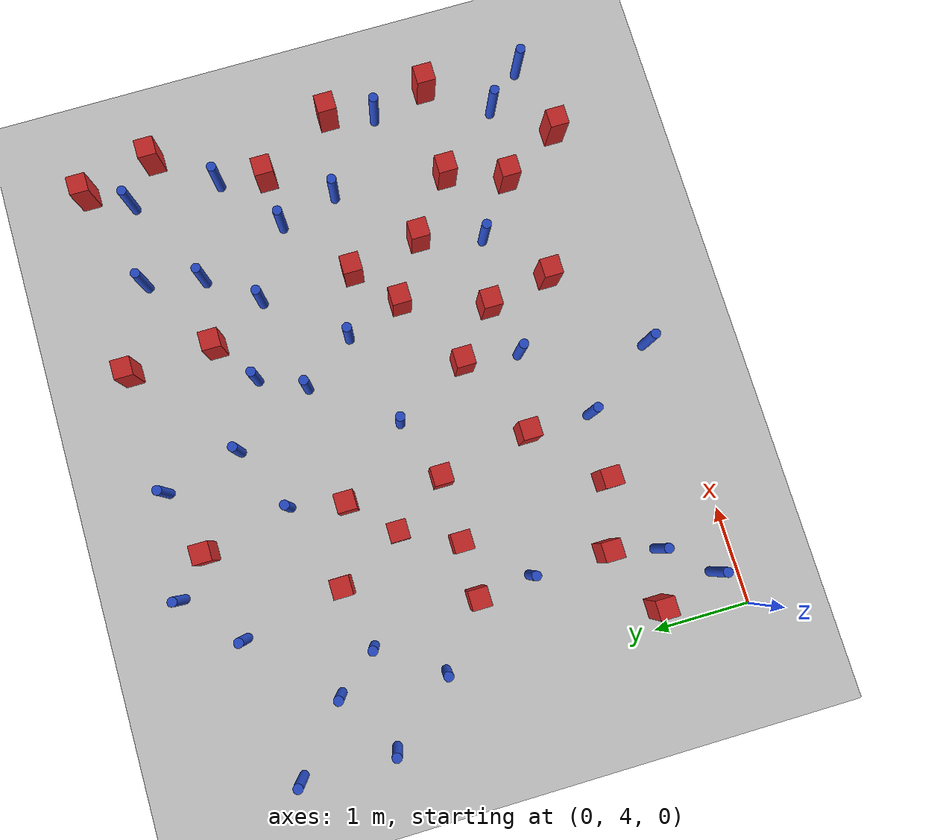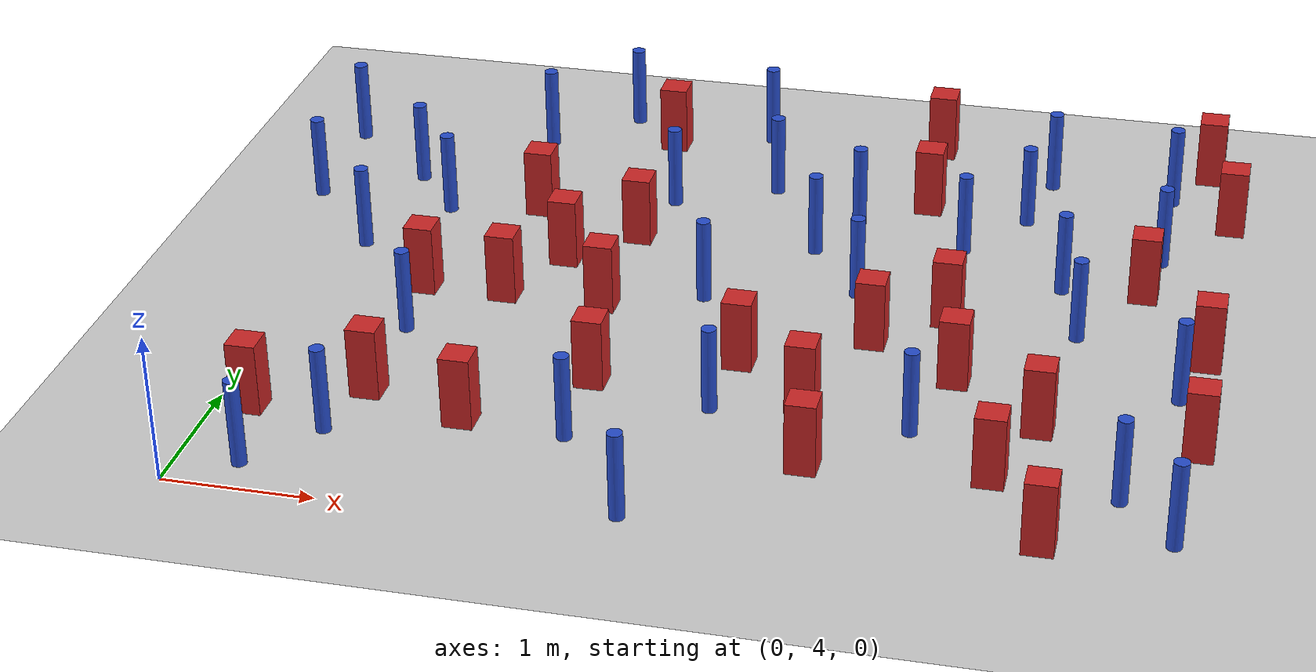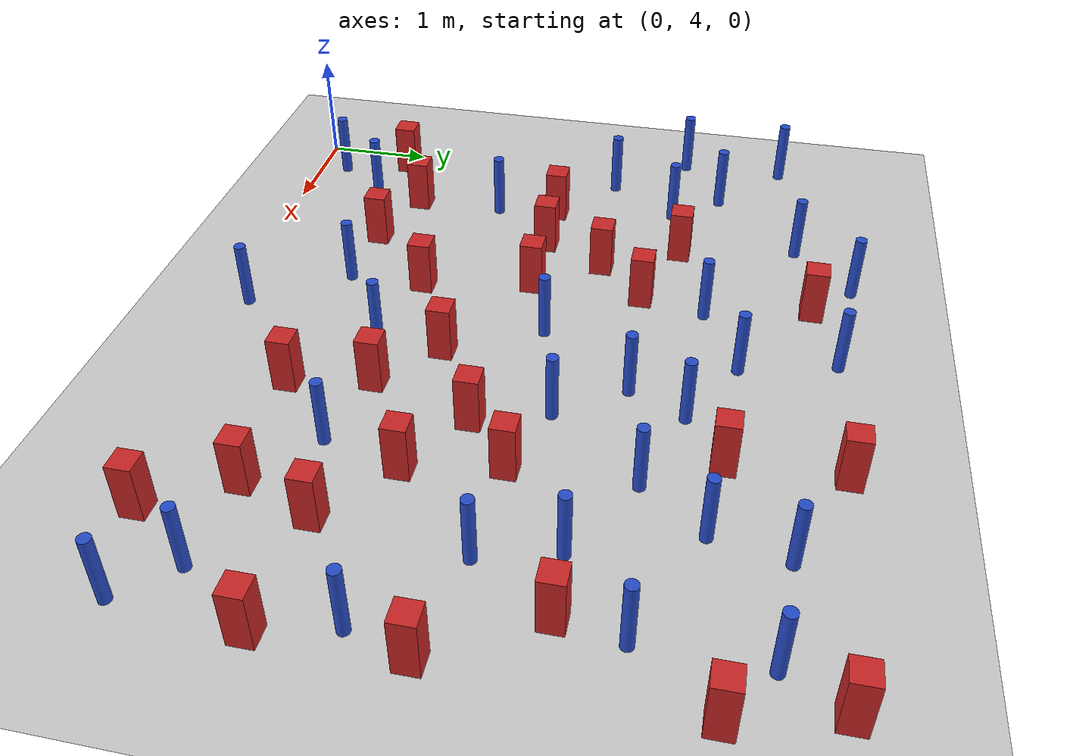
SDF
<sdf version="1.6">
 <world name="default">
  <model name="ground_plane">
   <static>1</static>
   <link name="link">
    <collision name="collision">
     <geometry><plane><normal>0 0 1</normal><size>100 100</size></plane></geometry>
     <surface><friction><ode><mu>100</mu><mu2>50</mu2></ode></friction></surface>
    </collision>
    <visual name="visual">
     <cast_shadows>0</cast_shadows>
     <geometry><plane><normal>0 0 1</normal><size>100 100</size></plane></geometry>
     <material>
      <ambient>1.0 1.0 1.0 1.0</ambient>
      <diffuse>0.8 0.8 0.8 1.0</diffuse>
      <specular>0.01 0.01 0.01 1.000000</specular>
     </material>
    </visual>
   </link>
  </model>
  <model name="pole_obstacle5">
   <static>true</static>
   <pose>4.39153985955 7.93179065304 7.38925637345e-09 -8.47170692796e-08 1.24976764786e-08 -1.74513093032e-07</pose>
   <link name="link">
    <pose>0 0 0.3 0 -0 0</pose>
    <inertial>
     <mass>1</mass>
     <inertia><ixx>0.145833</ixx><ixy>0</ixy><ixz>0</ixz><iyy>0.145833</iyy><iyz>0</iyz><izz>0.125</izz></inertia>
    </inertial>
    <collision name="collision">
     <geometry><cylinder><radius>0.05</radius><length>.6</length></cylinder></geometry>
    </collision>
    <visual name="visual">
     <geometry><cylinder><radius>0.05</radius><length>.6</length></cylinder></geometry>
     <material>
      <script><name>Gazebo/Blue</name><uri>file://media/materials/scripts/gazebo.material</uri></script>
     </material>
    </visual>
   </link>
  </model>
  <model name="pole_obstacle6">
   <static>true</static>
   <pose>5.76742457301 4.99722311599 7.38925637345e-09 -8.47170692796e-08 1.24976764786e-08 -1.74513093032e-07</pose>
   <link name="link">
    <pose>0 0 0.3 0 -0 0</pose>
    <inertial>
     <mass>1</mass>
     <inertia><ixx>0.145833</ixx><ixy>0</ixy><ixz>0</ixz><iyy>0.145833</iyy><iyz>0</iyz><izz>0.125</izz></inertia>
    </inertial>
    <collision name="collision">
     <geometry><cylinder><radius>0.05</radius><length>.6</length></cylinder></geometry>
    </collision>
    <visual name="visual">
     <geometry><cylinder><radius>0.05</radius><length>.6</length></cylinder></geometry>
     <material>
      <script><name>Gazebo/Blue</name><uri>file://media/materials/scripts/gazebo.material</uri></script>
     </material>
    </visual>
   </link>
  </model>
  <model name="pole_obstacle8">
   <static>true</static>
   <pose>5.13573356694 7.50833738013 7.38925637345e-09 -8.47170692796e-08 1.24976764786e-08 -1.74513093032e-07</pose>
   <link name="link">
    <pose>0 0 0.3 0 -0 0</pose>
    <inertial>
     <mass>1</mass>
     <inertia><ixx>0.145833</ixx><ixy>0</ixy><ixz>0</ixz><iyy>0.145833</iyy><iyz>0</iyz><izz>0.125</izz></inertia>
    </inertial>
    <collision name="collision">
     <geometry><cylinder><radius>0.05</radius><length>.6</length></cylinder></geometry>
    </collision>
    <visual name="visual">
     <geometry><cylinder><radius>0.05</radius><length>.6</length></cylinder></geometry>
     <material>
      <script><name>Gazebo/Blue</name><uri>file://media/materials/scripts/gazebo.material</uri></script>
     </material>
    </visual>
   </link>
  </model>
  <model name="square_post_obstacle14">
   <static>true</static>
   <pose>0.232962370025 4.91819987416 1.91545236811e-07 -7.35059704564e-06 1.12565212e-07 2.39332434364e-05</pose>
   <link name="link">
    <pose>0 0 0.25 0 -0 0</pose>
    <inertial>
     <mass>100</mass>
     <inertia>
      <ixx>0.166667</ixx>
      <ixy>0</ixy>
      <ixz>0</ixz>
      <iyy>0.166667</iyy>
      <iyz>0</iyz>
      <izz>0.166667</izz>
     </inertia>
    </inertial>
    <collision name="collision"><geometry><box><size>.2 .2 .5</size></box></geometry></collision>
    <visual name="visual">
     <geometry><box><size>.2 .2 .5</size></box></geometry>
     <material>
      <script><name>Gazebo/Red</name><uri>file://media/materials/scripts/gazebo.material</uri></script>
     </material>
    </visual>
   </link>
  </model>
  <model name="pole_obstacle13">
   <static>true</static>
   <pose>0.784797845011 4.74809284061 7.38925637345e-09 -8.471706928e-08 1.24976765086e-08 -1.74513093015e-07</pose>
   <link name="link">
    <pose>0 0 0.3 0 -0 0</pose>
    <inertial>
     <mass>1</mass>
     <inertia><ixx>0.145833</ixx><ixy>0</ixy><ixz>0</ixz><iyy>0.145833</iyy><iyz>0</iyz><izz>0.125</izz></inertia>
    </inertial>
    <collision name="collision">
     <geometry><cylinder><radius>0.05</radius><length>.6</length></cylinder></geometry>
    </collision>
    <visual name="visual">
     <geometry><cylinder><radius>0.05</radius><length>.6</length></cylinder></geometry>
     <material>
      <script><name>Gazebo/Blue</name><uri>file://media/materials/scripts/gazebo.material</uri></script>
     </material>
    </visual>
   </link>
  </model>
  <model name="pole_obstacle15">
   <static>true</static>
   <pose>2.74899262085 6.89058212394 7.38925637345e-09 -8.47170692798e-08 1.24976765033e-08 -1.74513093019e-07</pose>
   <link name="link">
    <pose>0 0 0.3 0 -0 0</pose>
    <inertial>
     <mass>1</mass>
     <inertia><ixx>0.145833</ixx><ixy>0</ixy><ixz>0</ixz><iyy>0.145833</iyy><iyz>0</iyz><izz>0.125</izz></inertia>
    </inertial>
    <collision name="collision">
     <geometry><cylinder><radius>0.05</radius><length>.6</length></cylinder></geometry>
    </collision>
    <visual name="visual">
     <geometry><cylinder><radius>0.05</radius><length>.6</length></cylinder></geometry>
     <material>
      <script><name>Gazebo/Blue</name><uri>file://media/materials/scripts/gazebo.material</uri></script>
     </material>
    </visual>
   </link>
  </model>
  <model name="pole_obstacle16">
   <static>true</static>
   <pose>2.22736100297 8.21816650694 7.38925637345e-09 -8.47170692793e-08 1.24976764408e-08 -1.74513093041e-07</pose>
   <link name="link">
    <pose>0 0 0.3 0 -0 0</pose>
    <inertial>
     <mass>1</mass>
     <inertia><ixx>0.145833</ixx><ixy>0</ixy><ixz>0</ixz><iyy>0.145833</iyy><iyz>0</iyz><izz>0.125</izz></inertia>
    </inertial>
    <collision name="collision">
     <geometry><cylinder><radius>0.05</radius><length>.6</length></cylinder></geometry>
    </collision>
    <visual name="visual">
     <geometry><cylinder><radius>0.05</radius><length>.6</length></cylinder></geometry>
     <material>
      <script><name>Gazebo/Blue</name><uri>file://media/materials/scripts/gazebo.material</uri></script>
     </material>
    </visual>
   </link>
  </model>
  <model name="pole_obstacle18">
   <static>true</static>
   <pose>6.03513034287 6.23221298561 7.38925637345e-09 -8.47170692796e-08 1.24976764786e-08 -1.74513093032e-07</pose>
   <link name="link">
    <pose>0 0 0.3 0 -0 0</pose>
    <inertial>
     <mass>1</mass>
     <inertia><ixx>0.145833</ixx><ixy>0</ixy><ixz>0</ixz><iyy>0.145833</iyy><iyz>0</iyz><izz>0.125</izz></inertia>
    </inertial>
    <collision name="collision">
     <geometry><cylinder><radius>0.05</radius><length>.6</length></cylinder></geometry>
    </collision>
    <visual name="visual">
     <geometry><cylinder><radius>0.05</radius><length>.6</length></cylinder></geometry>
     <material>
      <script><name>Gazebo/Blue</name><uri>file://media/materials/scripts/gazebo.material</uri></script>
     </material>
    </visual>
   </link>
  </model>
  <model name="square_post_obstacle31">
   <static>true</static>
   <pose>6.17595005001 6.72297390393 1.91545236811e-07 -7.35059704564e-06 1.12565212e-07 2.39332434364e-05</pose>
   <link name="link">
    <pose>0 0 0.25 0 -0 0</pose>
    <inertial>
     <mass>100</mass>
     <inertia>
      <ixx>0.166667</ixx>
      <ixy>0</ixy>
      <ixz>0</ixz>
      <iyy>0.166667</iyy>
      <iyz>0</iyz>
      <izz>0.166667</izz>
     </inertia>
    </inertial>
    <collision name="collision"><geometry><box><size>.2 .2 .5</size></box></geometry></collision>
    <visual name="visual">
     <geometry><box><size>.2 .2 .5</size></box></geometry>
     <material>
      <script><name>Gazebo/Red</name><uri>file://media/materials/scripts/gazebo.material</uri></script>
     </material>
    </visual>
   </link>
  </model>
  <model name="pole_obstacle22">
   <static>true</static>
   <pose>2.84004689693 4.20362259301 7.38925637345e-09 -8.47170692798e-08 1.24976765033e-08 -1.74513093019e-07</pose>
   <link name="link">
    <pose>0 0 0.3 0 -0 0</pose>
    <inertial>
     <mass>1</mass>
     <inertia><ixx>0.145833</ixx><ixy>0</ixy><ixz>0</ixz><iyy>0.145833</iyy><iyz>0</iyz><izz>0.125</izz></inertia>
    </inertial>
    <collision name="collision">
     <geometry><cylinder><radius>0.05</radius><length>.6</length></cylinder></geometry>
    </collision>
    <visual name="visual">
     <geometry><cylinder><radius>0.05</radius><length>.6</length></cylinder></geometry>
     <material>
      <script><name>Gazebo/Blue</name><uri>file://media/materials/scripts/gazebo.material</uri></script>
     </material>
    </visual>
   </link>
  </model>
  <model name="square_post_obstacle32">
   <static>true</static>
   <pose>4.96659706531 5.07061519006 1.91545236811e-07 -7.35059704564e-06 1.12565212e-07 2.39332434364e-05</pose>
   <link name="link">
    <pose>0 0 0.25 0 -0 0</pose>
    <inertial>
     <mass>100</mass>
     <inertia>
      <ixx>0.166667</ixx>
      <ixy>0</ixy>
      <ixz>0</ixz>
      <iyy>0.166667</iyy>
      <iyz>0</iyz>
      <izz>0.166667</izz>
     </inertia>
    </inertial>
    <collision name="collision"><geometry><box><size>.2 .2 .5</size></box></geometry></collision>
    <visual name="visual">
     <geometry><box><size>.2 .2 .5</size></box></geometry>
     <material>
      <script><name>Gazebo/Red</name><uri>file://media/materials/scripts/gazebo.material</uri></script>
     </material>
    </visual>
   </link>
  </model>
  <model name="square_post_obstacle33">
   <static>true</static>
   <pose>4.58626092064 6.16494144715 1.91545236811e-07 -7.35059704564e-06 1.12565212e-07 2.39332434364e-05</pose>
   <link name="link">
    <pose>0 0 0.25 0 -0 0</pose>
    <inertial>
     <mass>100</mass>
     <inertia>
      <ixx>0.166667</ixx>
      <ixy>0</ixy>
      <ixz>0</ixz>
      <iyy>0.166667</iyy>
      <iyz>0</iyz>
      <izz>0.166667</izz>
     </inertia>
    </inertial>
    <collision name="collision"><geometry><box><size>.2 .2 .5</size></box></geometry></collision>
    <visual name="visual">
     <geometry><box><size>.2 .2 .5</size></box></geometry>
     <material>
      <script><name>Gazebo/Red</name><uri>file://media/materials/scripts/gazebo.material</uri></script>
     </material>
    </visual>
   </link>
  </model>
  <model name="pole_obstacle28">
   <static>true</static>
   <pose>1.08086170697 8.9822980315 7.38925637345e-09 -8.47170692798e-08 1.24976764881e-08 -1.74513093027e-07</pose>
   <link name="link">
    <pose>0 0 0.3 0 -0 0</pose>
    <inertial>
     <mass>1</mass>
     <inertia><ixx>0.145833</ixx><ixy>0</ixy><ixz>0</ixz><iyy>0.145833</iyy><iyz>0</iyz><izz>0.125</izz></inertia>
    </inertial>
    <collision name="collision">
     <geometry><cylinder><radius>0.05</radius><length>.6</length></cylinder></geometry>
    </collision>
    <visual name="visual">
     <geometry><cylinder><radius>0.05</radius><length>.6</length></cylinder></geometry>
     <material>
      <script><name>Gazebo/Blue</name><uri>file://media/materials/scripts/gazebo.material</uri></script>
     </material>
    </visual>
   </link>
  </model>
  <model name="pole_obstacle30">
   <static>true</static>
   <pose>2.29263135251 4.98502636594 7.38925637345e-09 -8.47170692798e-08 1.24976765033e-08 -1.74513093019e-07</pose>
   <link name="link">
    <pose>0 0 0.3 0 -0 0</pose>
    <inertial>
     <mass>1</mass>
     <inertia><ixx>0.145833</ixx><ixy>0</ixy><ixz>0</ixz><iyy>0.145833</iyy><iyz>0</iyz><izz>0.125</izz></inertia>
    </inertial>
    <collision name="collision">
     <geometry><cylinder><radius>0.05</radius><length>.6</length></cylinder></geometry>
    </collision>
    <visual name="visual">
     <geometry><cylinder><radius>0.05</radius><length>.6</length></cylinder></geometry>
     <material>
      <script><name>Gazebo/Blue</name><uri>file://media/materials/scripts/gazebo.material</uri></script>
     </material>
    </visual>
   </link>
  </model>
  <model name="square_post_obstacle38">
   <static>true</static>
   <pose>2.01244430634 9.14642667524 1.91545236811e-07 -7.35059704564e-06 1.12565212e-07 2.39332434364e-05</pose>
   <link name="link">
    <pose>0 0 0.25 0 -0 0</pose>
    <inertial>
     <mass>100</mass>
     <inertia>
      <ixx>0.166667</ixx>
      <ixy>0</ixy>
      <ixz>0</ixz>
      <iyy>0.166667</iyy>
      <iyz>0</iyz>
      <izz>0.166667</izz>
     </inertia>
    </inertial>
    <collision name="collision"><geometry><box><size>.2 .2 .5</size></box></geometry></collision>
    <visual name="visual">
     <geometry><box><size>.2 .2 .5</size></box></geometry>
     <material>
      <script><name>Gazebo/Red</name><uri>file://media/materials/scripts/gazebo.material</uri></script>
     </material>
    </visual>
   </link>
  </model>
  <model name="pole_obstacle43">
   <static>true</static>
   <pose>3.76525996056 7.15480008397 7.38925637345e-09 -8.47170692798e-08 1.24976765033e-08 -1.74513093019e-07</pose>
   <link name="link">
    <pose>0 0 0.3 0 -0 0</pose>
    <inertial>
     <mass>1</mass>
     <inertia><ixx>0.145833</ixx><ixy>0</ixy><ixz>0</ixz><iyy>0.145833</iyy><iyz>0</iyz><izz>0.125</izz></inertia>
    </inertial>
    <collision name="collision">
     <geometry><cylinder><radius>0.05</radius><length>.6</length></cylinder></geometry>
    </collision>
    <visual name="visual">
     <geometry><cylinder><radius>0.05</radius><length>.6</length></cylinder></geometry>
     <material>
      <script><name>Gazebo/Blue</name><uri>file://media/materials/scripts/gazebo.material</uri></script>
     </material>
    </visual>
   </link>
  </model>
  <model name="square_post_obstacle55">
   <static>true</static>
   <pose>1.3088949511 7.9092401033 1.91545236811e-07 -7.35059704564e-06 1.12565212e-07 2.39332434364e-05</pose>
   <link name="link">
    <pose>0 0 0.25 0 -0 0</pose>
    <inertial>
     <mass>100</mass>
     <inertia>
      <ixx>0.166667</ixx>
      <ixy>0</ixy>
      <ixz>0</ixz>
      <iyy>0.166667</iyy>
      <iyz>0</iyz>
      <izz>0.166667</izz>
     </inertia>
    </inertial>
    <collision name="collision"><geometry><box><size>.2 .2 .5</size></box></geometry></collision>
    <visual name="visual">
     <geometry><box><size>.2 .2 .5</size></box></geometry>
     <material>
      <script><name>Gazebo/Red</name><uri>file://media/materials/scripts/gazebo.material</uri></script>
     </material>
    </visual>
   </link>
  </model>
  <model name="pole_obstacle66">
   <static>true</static>
   <pose>6.12546084603 4.60340250097 7.38925637345e-09 -8.47170692796e-08 1.24976764786e-08 -1.74513093032e-07</pose>
   <link name="link">
    <pose>0 0 0.3 0 -0 0</pose>
    <inertial>
     <mass>1</mass>
     <inertia><ixx>0.145833</ixx><ixy>0</ixy><ixz>0</ixz><iyy>0.145833</iyy><iyz>0</iyz><izz>0.125</izz></inertia>
    </inertial>
    <collision name="collision">
     <geometry><cylinder><radius>0.05</radius><length>.6</length></cylinder></geometry>
    </collision>
    <visual name="visual">
     <geometry><cylinder><radius>0.05</radius><length>.6</length></cylinder></geometry>
     <material>
      <script><name>Gazebo/Blue</name><uri>file://media/materials/scripts/gazebo.material</uri></script>
     </material>
    </visual>
   </link>
  </model>
  <model name="square_post_obstacle73">
   <static>true</static>
   <pose>1.60041436819 5.03787966719 1.91545236811e-07 -7.35059704564e-06 1.12565212e-07 2.39332434364e-05</pose>
   <link name="link">
    <pose>0 0 0.25 0 -0 0</pose>
    <inertial>
     <mass>100</mass>
     <inertia>
      <ixx>0.166667</ixx>
      <ixy>0</ixy>
      <ixz>0</ixz>
      <iyy>0.166667</iyy>
      <iyz>0</iyz>
      <izz>0.166667</izz>
     </inertia>
    </inertial>
    <collision name="collision"><geometry><box><size>.2 .2 .5</size></box></geometry></collision>
    <visual name="visual">
     <geometry><box><size>.2 .2 .5</size></box></geometry>
     <material>
      <script><name>Gazebo/Red</name><uri>file://media/materials/scripts/gazebo.material</uri></script>
     </material>
    </visual>
   </link>
  </model>
  <model name="square_post_obstacle76">
   <static>true</static>
   <pose>0.91072017648 5.25310935651 1.91545236811e-07 -7.35059704564e-06 1.12565212e-07 2.39332434364e-05</pose>
   <link name="link">
    <pose>0 0 0.25 0 -0 0</pose>
    <inertial>
     <mass>100</mass>
     <inertia>
      <ixx>0.166667</ixx>
      <ixy>0</ixy>
      <ixz>0</ixz>
      <iyy>0.166667</iyy>
      <iyz>0</iyz>
      <izz>0.166667</izz>
     </inertia>
    </inertial>
    <collision name="collision"><geometry><box><size>.2 .2 .5</size></box></geometry></collision>
    <visual name="visual">
     <geometry><box><size>.2 .2 .5</size></box></geometry>
     <material>
      <script><name>Gazebo/Red</name><uri>file://media/materials/scripts/gazebo.material</uri></script>
     </material>
    </visual>
   </link>
  </model>
  <model name="pole_obstacle74">
   <static>true</static>
   <pose>-0.363256607138 8.78772341327 7.38925637345e-09 -8.47170692796e-08 1.24976764724e-08 -1.74513093036e-07</pose>
   <link name="link">
    <pose>0 0 0.3 0 -0 0</pose>
    <inertial>
     <mass>1</mass>
     <inertia><ixx>0.145833</ixx><ixy>0</ixy><ixz>0</ixz><iyy>0.145833</iyy><iyz>0</iyz><izz>0.125</izz></inertia>
    </inertial>
    <collision name="collision">
     <geometry><cylinder><radius>0.05</radius><length>.6</length></cylinder></geometry>
    </collision>
    <visual name="visual">
     <geometry><cylinder><radius>0.05</radius><length>.6</length></cylinder></geometry>
     <material>
      <script><name>Gazebo/Blue</name><uri>file://media/materials/scripts/gazebo.material</uri></script>
     </material>
    </visual>
   </link>
  </model>
  <model name="pole_obstacle81">
   <static>true</static>
   <pose>5.77565618523 8.03570630819 7.38925637345e-09 -8.47170692797e-08 1.24976764908e-08 -1.74513093024e-07</pose>
   <link name="link">
    <pose>0 0 0.3 0 -0 0</pose>
    <inertial>
     <mass>1</mass>
     <inertia><ixx>0.145833</ixx><ixy>0</ixy><ixz>0</ixz><iyy>0.145833</iyy><iyz>0</iyz><izz>0.125</izz></inertia>
    </inertial>
    <collision name="collision">
     <geometry><cylinder><radius>0.05</radius><length>.6</length></cylinder></geometry>
    </collision>
    <visual name="visual">
     <geometry><cylinder><radius>0.05</radius><length>.6</length></cylinder></geometry>
     <material>
      <script><name>Gazebo/Blue</name><uri>file://media/materials/scripts/gazebo.material</uri></script>
     </material>
    </visual>
   </link>
  </model>
  <model name="pole_obstacle87">
   <static>true</static>
   <pose>0.651697800376 7.77038303811 7.38925637345e-09 -8.471706928e-08 1.24976765086e-08 -1.74513093015e-07</pose>
   <link name="link">
    <pose>0 0 0.3 0 -0 0</pose>
    <inertial>
     <mass>1</mass>
     <inertia><ixx>0.145833</ixx><ixy>0</ixy><ixz>0</ixz><iyy>0.145833</iyy><iyz>0</iyz><izz>0.125</izz></inertia>
    </inertial>
    <collision name="collision">
     <geometry><cylinder><radius>0.05</radius><length>.6</length></cylinder></geometry>
    </collision>
    <visual name="visual">
     <geometry><cylinder><radius>0.05</radius><length>.6</length></cylinder></geometry>
     <material>
      <script><name>Gazebo/Blue</name><uri>file://media/materials/scripts/gazebo.material</uri></script>
     </material>
    </visual>
   </link>
  </model>
  <model name="pole_obstacle103">
   <static>true</static>
   <pose>1.63134176314 9.49767391951 7.38925637345e-09 -8.47170692798e-08 1.24976764881e-08 -1.74513093027e-07</pose>
   <link name="link">
    <pose>0 0 0.3 0 -0 0</pose>
    <inertial>
     <mass>1</mass>
     <inertia><ixx>0.145833</ixx><ixy>0</ixy><ixz>0</ixz><iyy>0.145833</iyy><iyz>0</iyz><izz>0.125</izz></inertia>
    </inertial>
    <collision name="collision">
     <geometry><cylinder><radius>0.05</radius><length>.6</length></cylinder></geometry>
    </collision>
    <visual name="visual">
     <geometry><cylinder><radius>0.05</radius><length>.6</length></cylinder></geometry>
     <material>
      <script><name>Gazebo/Blue</name><uri>file://media/materials/scripts/gazebo.material</uri></script>
     </material>
    </visual>
   </link>
  </model>
  <model name="square_post_obstacle92">
   <static>true</static>
   <pose>2.10453509981 7.64649235375 1.91545236811e-07 -7.35059704564e-06 1.12565212e-07 2.39332434364e-05</pose>
   <link name="link">
    <pose>0 0 0.25 0 -0 0</pose>
    <inertial>
     <mass>100</mass>
     <inertia>
      <ixx>0.166667</ixx>
      <ixy>0</ixy>
      <ixz>0</ixz>
      <iyy>0.166667</iyy>
      <iyz>0</iyz>
      <izz>0.166667</izz>
     </inertia>
    </inertial>
    <collision name="collision"><geometry><box><size>.2 .2 .5</size></box></geometry></collision>
    <visual name="visual">
     <geometry><box><size>.2 .2 .5</size></box></geometry>
     <material>
      <script><name>Gazebo/Red</name><uri>file://media/materials/scripts/gazebo.material</uri></script>
     </material>
    </visual>
   </link>
  </model>
  <model name="square_post_obstacle111">
   <static>true</static>
   <pose>5.34566899291 4.4313223376 1.91545236811e-07 -7.35059704564e-06 1.12565212e-07 2.39332434364e-05</pose>
   <link name="link">
    <pose>0 0 0.25 0 -0 0</pose>
    <inertial>
     <mass>100</mass>
     <inertia>
      <ixx>0.166667</ixx>
      <ixy>0</ixy>
      <ixz>0</ixz>
      <iyy>0.166667</iyy>
      <iyz>0</iyz>
      <izz>0.166667</izz>
     </inertia>
    </inertial>
    <collision name="collision"><geometry><box><size>.2 .2 .5</size></box></geometry></collision>
    <visual name="visual">
     <geometry><box><size>.2 .2 .5</size></box></geometry>
     <material>
      <script><name>Gazebo/Red</name><uri>file://media/materials/scripts/gazebo.material</uri></script>
     </material>
    </visual>
   </link>
  </model>
  <model name="pole_obstacle120">
   <static>true</static>
   <pose>-0.354308188248 7.82070968504 7.38925637345e-09 -8.471706928e-08 1.24976765079e-08 -1.74513093015e-07</pose>
   <link name="link">
    <pose>0 0 0.3 0 -0 0</pose>
    <inertial>
     <mass>1</mass>
     <inertia><ixx>0.145833</ixx><ixy>0</ixy><ixz>0</ixz><iyy>0.145833</iyy><iyz>0</iyz><izz>0.125</izz></inertia>
    </inertial>
    <collision name="collision">
     <geometry><cylinder><radius>0.05</radius><length>.6</length></cylinder></geometry>
    </collision>
    <visual name="visual">
     <geometry><cylinder><radius>0.05</radius><length>.6</length></cylinder></geometry>
     <material>
      <script><name>Gazebo/Blue</name><uri>file://media/materials/scripts/gazebo.material</uri></script>
     </material>
    </visual>
   </link>
  </model>
  <model name="square_post_obstacle112">
   <static>true</static>
   <pose>5.1889103898 5.69261006343 1.91545236811e-07 -7.35059704564e-06 1.12565212e-07 2.39332434364e-05</pose>
   <link name="link">
    <pose>0 0 0.25 0 -0 0</pose>
    <inertial>
     <mass>100</mass>
     <inertia>
      <ixx>0.166667</ixx>
      <ixy>0</ixy>
      <ixz>0</ixz>
      <iyy>0.166667</iyy>
      <iyz>0</iyz>
      <izz>0.166667</izz>
     </inertia>
    </inertial>
    <collision name="collision"><geometry><box><size>.2 .2 .5</size></box></geometry></collision>
    <visual name="visual">
     <geometry><box><size>.2 .2 .5</size></box></geometry>
     <material>
      <script><name>Gazebo/Red</name><uri>file://media/materials/scripts/gazebo.material</uri></script>
     </material>
    </visual>
   </link>
  </model>
  <model name="pole_obstacle121">
   <static>true</static>
   <pose>3.10835763081 5.50035315032 7.38925637345e-09 -8.47170692798e-08 1.24976765033e-08 -1.74513093019e-07</pose>
   <link name="link">
    <pose>0 0 0.3 0 -0 0</pose>
    <inertial>
     <mass>1</mass>
     <inertia><ixx>0.145833</ixx><ixy>0</ixy><ixz>0</ixz><iyy>0.145833</iyy><iyz>0</iyz><izz>0.125</izz></inertia>
    </inertial>
    <collision name="collision">
     <geometry><cylinder><radius>0.05</radius><length>.6</length></cylinder></geometry>
    </collision>
    <visual name="visual">
     <geometry><cylinder><radius>0.05</radius><length>.6</length></cylinder></geometry>
     <material>
      <script><name>Gazebo/Blue</name><uri>file://media/materials/scripts/gazebo.material</uri></script>
     </material>
    </visual>
   </link>
  </model>
  <model name="pole_obstacle123">
   <static>true</static>
   <pose>4.40342482193 5.49537354942 7.38925637345e-09 -8.47170692796e-08 1.24976764786e-08 -1.74513093032e-07</pose>
   <link name="link">
    <pose>0 0 0.3 0 -0 0</pose>
    <inertial>
     <mass>1</mass>
     <inertia><ixx>0.145833</ixx><ixy>0</ixy><ixz>0</ixz><iyy>0.145833</iyy><iyz>0</iyz><izz>0.125</izz></inertia>
    </inertial>
    <collision name="collision">
     <geometry><cylinder><radius>0.05</radius><length>.6</length></cylinder></geometry>
    </collision>
    <visual name="visual">
     <geometry><cylinder><radius>0.05</radius><length>.6</length></cylinder></geometry>
     <material>
      <script><name>Gazebo/Blue</name><uri>file://media/materials/scripts/gazebo.material</uri></script>
     </material>
    </visual>
   </link>
  </model>
  <model name="square_post_obstacle113">
   <static>true</static>
   <pose>5.69326045671 7.53853142987 1.91545236811e-07 -7.35059704564e-06 1.12565212e-07 2.39332434364e-05</pose>
   <link name="link">
    <pose>0 0 0.25 0 -0 0</pose>
    <inertial>
     <mass>100</mass>
     <inertia>
      <ixx>0.166667</ixx>
      <ixy>0</ixy>
      <ixz>0</ixz>
      <iyy>0.166667</iyy>
      <iyz>0</iyz>
      <izz>0.166667</izz>
     </inertia>
    </inertial>
    <collision name="collision"><geometry><box><size>.2 .2 .5</size></box></geometry></collision>
    <visual name="visual">
     <geometry><box><size>.2 .2 .5</size></box></geometry>
     <material>
      <script><name>Gazebo/Red</name><uri>file://media/materials/scripts/gazebo.material</uri></script>
     </material>
    </visual>
   </link>
  </model>
  <model name="pole_obstacle129">
   <static>true</static>
   <pose>4.77958987309 8.45444126846 7.38925637345e-09 -8.471706928e-08 1.24976765081e-08 -1.74513093015e-07</pose>
   <link name="link">
    <pose>0 0 0.3 0 -0 0</pose>
    <inertial>
     <mass>1</mass>
     <inertia><ixx>0.145833</ixx><ixy>0</ixy><ixz>0</ixz><iyy>0.145833</iyy><iyz>0</iyz><izz>0.125</izz></inertia>
    </inertial>
    <collision name="collision">
     <geometry><cylinder><radius>0.05</radius><length>.6</length></cylinder></geometry>
    </collision>
    <visual name="visual">
     <geometry><cylinder><radius>0.05</radius><length>.6</length></cylinder></geometry>
     <material>
      <script><name>Gazebo/Blue</name><uri>file://media/materials/scripts/gazebo.material</uri></script>
     </material>
    </visual>
   </link>
  </model>
  <model name="square_post_obstacle114">
   <static>true</static>
   <pose>0.830090490671 6.63945671948 1.91545236811e-07 -7.35059704564e-06 1.12565212e-07 2.39332434364e-05</pose>
   <link name="link">
    <pose>0 0 0.25 0 -0 0</pose>
    <inertial>
     <mass>100</mass>
     <inertia>
      <ixx>0.166667</ixx>
      <ixy>0</ixy>
      <ixz>0</ixz>
      <iyy>0.166667</iyy>
      <iyz>0</iyz>
      <izz>0.166667</izz>
     </inertia>
    </inertial>
    <collision name="collision"><geometry><box><size>.2 .2 .5</size></box></geometry></collision>
    <visual name="visual">
     <geometry><box><size>.2 .2 .5</size></box></geometry>
     <material>
      <script><name>Gazebo/Red</name><uri>file://media/materials/scripts/gazebo.material</uri></script>
     </material>
    </visual>
   </link>
  </model>
  <model name="pole_obstacle135">
   <static>true</static>
   <pose>0.408938806811 4.27548640386 7.38925637345e-09 -8.471706928e-08 1.24976765079e-08 -1.74513093015e-07</pose>
   <link name="link">
    <pose>0 0 0.3 0 -0 0</pose>
    <inertial>
     <mass>1</mass>
     <inertia><ixx>0.145833</ixx><ixy>0</ixy><ixz>0</ixz><iyy>0.145833</iyy><iyz>0</iyz><izz>0.125</izz></inertia>
    </inertial>
    <collision name="collision">
     <geometry><cylinder><radius>0.05</radius><length>.6</length></cylinder></geometry>
    </collision>
    <visual name="visual">
     <geometry><cylinder><radius>0.05</radius><length>.6</length></cylinder></geometry>
     <material>
      <script><name>Gazebo/Blue</name><uri>file://media/materials/scripts/gazebo.material</uri></script>
     </material>
    </visual>
   </link>
  </model>
  <model name="square_post_obstacle116">
   <static>true</static>
   <pose>1.68109024433 7.22197656062 1.91545236811e-07 -7.35059704564e-06 1.12565212e-07 2.39332434364e-05</pose>
   <link name="link">
    <pose>0 0 0.25 0 -0 0</pose>
    <inertial>
     <mass>100</mass>
     <inertia>
      <ixx>0.166667</ixx>
      <ixy>0</ixy>
      <ixz>0</ixz>
      <iyy>0.166667</iyy>
      <iyz>0</iyz>
      <izz>0.166667</izz>
     </inertia>
    </inertial>
    <collision name="collision"><geometry><box><size>.2 .2 .5</size></box></geometry></collision>
    <visual name="visual">
     <geometry><box><size>.2 .2 .5</size></box></geometry>
     <material>
      <script><name>Gazebo/Red</name><uri>file://media/materials/scripts/gazebo.material</uri></script>
     </material>
    </visual>
   </link>
  </model>
  <model name="pole_obstacle136">
   <static>true</static>
   <pose>3.59677728636 8.19386945836 7.38925637345e-09 -8.47170692793e-08 1.24976764408e-08 -1.74513093041e-07</pose>
   <link name="link">
    <pose>0 0 0.3 0 -0 0</pose>
    <inertial>
     <mass>1</mass>
     <inertia><ixx>0.145833</ixx><ixy>0</ixy><ixz>0</ixz><iyy>0.145833</iyy><iyz>0</iyz><izz>0.125</izz></inertia>
    </inertial>
    <collision name="collision">
     <geometry><cylinder><radius>0.05</radius><length>.6</length></cylinder></geometry>
    </collision>
    <visual name="visual">
     <geometry><cylinder><radius>0.05</radius><length>.6</length></cylinder></geometry>
     <material>
      <script><name>Gazebo/Blue</name><uri>file://media/materials/scripts/gazebo.material</uri></script>
     </material>
    </visual>
   </link>
  </model>
  <model name="square_post_obstacle127">
   <static>true</static>
   <pose>3.68083653551 5.65840267269 1.91545236811e-07 -7.35059704564e-06 1.12565212e-07 2.39332434364e-05</pose>
   <link name="link">
    <pose>0 0 0.25 0 -0 0</pose>
    <inertial>
     <mass>100</mass>
     <inertia>
      <ixx>0.166667</ixx>
      <ixy>0</ixy>
      <ixz>0</ixz>
      <iyy>0.166667</iyy>
      <iyz>0</iyz>
      <izz>0.166667</izz>
     </inertia>
    </inertial>
    <collision name="collision"><geometry><box><size>.2 .2 .5</size></box></geometry></collision>
    <visual name="visual">
     <geometry><box><size>.2 .2 .5</size></box></geometry>
     <material>
      <script><name>Gazebo/Red</name><uri>file://media/materials/scripts/gazebo.material</uri></script>
     </material>
    </visual>
   </link>
  </model>
  <model name="square_post_obstacle128">
   <static>true</static>
   <pose>3.82015970273 4.97283858454 1.91545236811e-07 -7.35059704564e-06 1.12565212e-07 2.39332434364e-05</pose>
   <link name="link">
    <pose>0 0 0.25 0 -0 0</pose>
    <inertial>
     <mass>100</mass>
     <inertia>
      <ixx>0.166667</ixx>
      <ixy>0</ixy>
      <ixz>0</ixz>
      <iyy>0.166667</iyy>
      <iyz>0</iyz>
      <izz>0.166667</izz>
     </inertia>
    </inertial>
    <collision name="collision"><geometry><box><size>.2 .2 .5</size></box></geometry></collision>
    <visual name="visual">
     <geometry><box><size>.2 .2 .5</size></box></geometry>
     <material>
      <script><name>Gazebo/Red</name><uri>file://media/materials/scripts/gazebo.material</uri></script>
     </material>
    </visual>
   </link>
  </model>
  <model name="square_post_obstacle129">
   <static>true</static>
   <pose>3.97330372839 6.54512328771 1.91545236811e-07 -7.35059704564e-06 1.12565212e-07 2.39332434364e-05</pose>
   <link name="link">
    <pose>0 0 0.25 0 -0 0</pose>
    <inertial>
     <mass>100</mass>
     <inertia>
      <ixx>0.166667</ixx>
      <ixy>0</ixy>
      <ixz>0</ixz>
      <iyy>0.166667</iyy>
      <iyz>0</iyz>
      <izz>0.166667</izz>
     </inertia>
    </inertial>
    <collision name="collision"><geometry><box><size>.2 .2 .5</size></box></geometry></collision>
    <visual name="visual">
     <geometry><box><size>.2 .2 .5</size></box></geometry>
     <material>
      <script><name>Gazebo/Red</name><uri>file://media/materials/scripts/gazebo.material</uri></script>
     </material>
    </visual>
   </link>
  </model>
  <model name="square_post_obstacle131">
   <static>true</static>
   <pose>2.09307528019 6.65097722752 1.91545236811e-07 -7.35059704564e-06 1.12565212e-07 2.39332434364e-05</pose>
   <link name="link">
    <pose>0 0 0.25 0 -0 0</pose>
    <inertial>
     <mass>100</mass>
     <inertia>
      <ixx>0.166667</ixx>
      <ixy>0</ixy>
      <ixz>0</ixz>
      <iyy>0.166667</iyy>
      <iyz>0</iyz>
      <izz>0.166667</izz>
     </inertia>
    </inertial>
    <collision name="collision"><geometry><box><size>.2 .2 .5</size></box></geometry></collision>
    <visual name="visual">
     <geometry><box><size>.2 .2 .5</size></box></geometry>
     <material>
      <script><name>Gazebo/Red</name><uri>file://media/materials/scripts/gazebo.material</uri></script>
     </material>
    </visual>
   </link>
  </model>
  <model name="square_post_obstacle133">
   <static>true</static>
   <pose>4.05838826374 8.52233491909 1.91545236811e-07 -7.35059704564e-06 1.12565212e-07 2.39332434364e-05</pose>
   <link name="link">
    <pose>0 0 0.25 0 -0 0</pose>
    <inertial>
     <mass>100</mass>
     <inertia>
      <ixx>0.166667</ixx>
      <ixy>0</ixy>
      <ixz>0</ixz>
      <iyy>0.166667</iyy>
      <iyz>0</iyz>
      <izz>0.166667</izz>
     </inertia>
    </inertial>
    <collision name="collision"><geometry><box><size>.2 .2 .5</size></box></geometry></collision>
    <visual name="visual">
     <geometry><box><size>.2 .2 .5</size></box></geometry>
     <material>
      <script><name>Gazebo/Red</name><uri>file://media/materials/scripts/gazebo.material</uri></script>
     </material>
    </visual>
   </link>
  </model>
  <model name="square_post_obstacle138">
   <static>true</static>
   <pose>6.19738625518 5.63340160836 1.91545236811e-07 -7.35059704564e-06 1.12565212e-07 2.39332434364e-05</pose>
   <link name="link">
    <pose>0 0 0.25 0 -0 0</pose>
    <inertial>
     <mass>100</mass>
     <inertia>
      <ixx>0.166667</ixx>
      <ixy>0</ixy>
      <ixz>0</ixz>
      <iyy>0.166667</iyy>
      <iyz>0</iyz>
      <izz>0.166667</izz>
     </inertia>
    </inertial>
    <collision name="collision"><geometry><box><size>.2 .2 .5</size></box></geometry></collision>
    <visual name="visual">
     <geometry><box><size>.2 .2 .5</size></box></geometry>
     <material>
      <script><name>Gazebo/Red</name><uri>file://media/materials/scripts/gazebo.material</uri></script>
     </material>
    </visual>
   </link>
  </model>
  <model name="square_post_obstacle149">
   <static>true</static>
   <pose>4.42620920596 6.93356963306 1.91545236811e-07 -7.35059704564e-06 1.12565212e-07 2.39332434364e-05</pose>
   <link name="link">
    <pose>0 0 0.25 0 -0 0</pose>
    <inertial>
     <mass>100</mass>
     <inertia>
      <ixx>0.166667</ixx>
      <ixy>0</ixy>
      <ixz>0</ixz>
      <iyy>0.166667</iyy>
      <iyz>0</iyz>
      <izz>0.166667</izz>
     </inertia>
    </inertial>
    <collision name="collision"><geometry><box><size>.2 .2 .5</size></box></geometry></collision>
    <visual name="visual">
     <geometry><box><size>.2 .2 .5</size></box></geometry>
     <material>
      <script><name>Gazebo/Red</name><uri>file://media/materials/scripts/gazebo.material</uri></script>
     </material>
    </visual>
   </link>
  </model>
  <model name="square_post_obstacle150">
   <static>true</static>
   <pose>4.01902291382 9.44360073799 1.91545236811e-07 -7.35059704564e-06 1.12565212e-07 2.39332434364e-05</pose>
   <link name="link">
    <pose>0 0 0.25 0 -0 0</pose>
    <inertial>
     <mass>100</mass>
     <inertia>
      <ixx>0.166667</ixx>
      <ixy>0</ixy>
      <ixz>0</ixz>
      <iyy>0.166667</iyy>
      <iyz>0</iyz>
      <izz>0.166667</izz>
     </inertia>
    </inertial>
    <collision name="collision"><geometry><box><size>.2 .2 .5</size></box></geometry></collision>
    <visual name="visual">
     <geometry><box><size>.2 .2 .5</size></box></geometry>
     <material>
      <script><name>Gazebo/Red</name><uri>file://media/materials/scripts/gazebo.material</uri></script>
     </material>
    </visual>
   </link>
  </model>
  <model name="square_post_obstacle155">
   <static>true</static>
   <pose>1.40554139881 6.64452784428 1.91545236811e-07 -7.35059704564e-06 1.12565212e-07 2.39332434364e-05</pose>
   <link name="link">
    <pose>0 0 0.25 0 -0 0</pose>
    <inertial>
     <mass>100</mass>
     <inertia>
      <ixx>0.166667</ixx>
      <ixy>0</ixy>
      <ixz>0</ixz>
      <iyy>0.166667</iyy>
      <iyz>0</iyz>
      <izz>0.166667</izz>
     </inertia>
    </inertial>
    <collision name="collision"><geometry><box><size>.2 .2 .5</size></box></geometry></collision>
    <visual name="visual">
     <geometry><box><size>.2 .2 .5</size></box></geometry>
     <material>
      <script><name>Gazebo/Red</name><uri>file://media/materials/scripts/gazebo.material</uri></script>
     </material>
    </visual>
   </link>
  </model>
  <model name="square_post_obstacle158">
   <static>true</static>
   <pose>6.02633774 9.42386077109 1.91545236811e-07 -7.35059704564e-06 1.12565212e-07 2.39332434364e-05</pose>
   <link name="link">
    <pose>0 0 0.25 0 -0 0</pose>
    <inertial>
     <mass>100</mass>
     <inertia>
      <ixx>0.166667</ixx>
      <ixy>0</ixy>
      <ixz>0</ixz>
      <iyy>0.166667</iyy>
      <iyz>0</iyz>
      <izz>0.166667</izz>
     </inertia>
    </inertial>
    <collision name="collision"><geometry><box><size>.2 .2 .5</size></box></geometry></collision>
    <visual name="visual">
     <geometry><box><size>.2 .2 .5</size></box></geometry>
     <material>
      <script><name>Gazebo/Red</name><uri>file://media/materials/scripts/gazebo.material</uri></script>
     </material>
    </visual>
   </link>
  </model>
  <model name="pole_obstacle169">
   <static>true</static>
   <pose>2.92151758346 8.56080370806 7.38925637345e-09 -8.47170692793e-08 1.24976764408e-08 -1.74513093041e-07</pose>
   <link name="link">
    <pose>0 0 0.3 0 -0 0</pose>
    <inertial>
     <mass>1</mass>
     <inertia><ixx>0.145833</ixx><ixy>0</ixy><ixz>0</ixz><iyy>0.145833</iyy><iyz>0</iyz><izz>0.125</izz></inertia>
    </inertial>
    <collision name="collision">
     <geometry><cylinder><radius>0.05</radius><length>.6</length></cylinder></geometry>
    </collision>
    <visual name="visual">
     <geometry><cylinder><radius>0.05</radius><length>.6</length></cylinder></geometry>
     <material>
      <script><name>Gazebo/Blue</name><uri>file://media/materials/scripts/gazebo.material</uri></script>
     </material>
    </visual>
   </link>
  </model>
  <model name="pole_obstacle170">
   <static>true</static>
   <pose>5.78237171879 8.97970932365 7.38925637345e-09 -8.471706928e-08 1.24976765081e-08 -1.74513093015e-07</pose>
   <link name="link">
    <pose>0 0 0.3 0 -0 0</pose>
    <inertial>
     <mass>1</mass>
     <inertia><ixx>0.145833</ixx><ixy>0</ixy><ixz>0</ixz><iyy>0.145833</iyy><iyz>0</iyz><izz>0.125</izz></inertia>
    </inertial>
    <collision name="collision">
     <geometry><cylinder><radius>0.05</radius><length>.6</length></cylinder></geometry>
    </collision>
    <visual name="visual">
     <geometry><cylinder><radius>0.05</radius><length>.6</length></cylinder></geometry>
     <material>
      <script><name>Gazebo/Blue</name><uri>file://media/materials/scripts/gazebo.material</uri></script>
     </material>
    </visual>
   </link>
  </model>
  <model name="pole_obstacle186">
   <static>true</static>
   <pose>0.221894490422 7.14266407229 7.38925637345e-09 -8.471706928e-08 1.24976765124e-08 -1.74513093014e-07</pose>
   <link name="link">
    <pose>0 0 0.3 0 -0 0</pose>
    <inertial>
     <mass>1</mass>
     <inertia><ixx>0.145833</ixx><ixy>0</ixy><ixz>0</ixz><iyy>0.145833</iyy><iyz>0</iyz><izz>0.125</izz></inertia>
    </inertial>
    <collision name="collision">
     <geometry><cylinder><radius>0.05</radius><length>.6</length></cylinder></geometry>
    </collision>
    <visual name="visual">
     <geometry><cylinder><radius>0.05</radius><length>.6</length></cylinder></geometry>
     <material>
      <script><name>Gazebo/Blue</name><uri>file://media/materials/scripts/gazebo.material</uri></script>
     </material>
    </visual>
   </link>
  </model>
  <model name="square_post_obstacle183">
   <static>true</static>
   <pose>3.17146963035 6.09982623751 1.91545236811e-07 -7.35059704564e-06 1.12565212e-07 2.39332434364e-05</pose>
   <link name="link">
    <pose>0 0 0.25 0 -0 0</pose>
    <inertial>
     <mass>100</mass>
     <inertia>
      <ixx>0.166667</ixx>
      <ixy>0</ixy>
      <ixz>0</ixz>
      <iyy>0.166667</iyy>
      <iyz>0</iyz>
      <izz>0.166667</izz>
     </inertia>
    </inertial>
    <collision name="collision"><geometry><box><size>.2 .2 .5</size></box></geometry></collision>
    <visual name="visual">
     <geometry><box><size>.2 .2 .5</size></box></geometry>
     <material>
      <script><name>Gazebo/Red</name><uri>file://media/materials/scripts/gazebo.material</uri></script>
     </material>
    </visual>
   </link>
  </model>
  <model name="square_post_obstacle192">
   <static>true</static>
   <pose>6.22032938336 8.65323943888 1.91545236811e-07 -7.35059704564e-06 1.12565212e-07 2.39332434364e-05</pose>
   <link name="link">
    <pose>0 0 0.25 0 -0 0</pose>
    <inertial>
     <mass>100</mass>
     <inertia>
      <ixx>0.166667</ixx>
      <ixy>0</ixy>
      <ixz>0</ixz>
      <iyy>0.166667</iyy>
      <iyz>0</iyz>
      <izz>0.166667</izz>
     </inertia>
    </inertial>
    <collision name="collision"><geometry><box><size>.2 .2 .5</size></box></geometry></collision>
    <visual name="visual">
     <geometry><box><size>.2 .2 .5</size></box></geometry>
     <material>
      <script><name>Gazebo/Red</name><uri>file://media/materials/scripts/gazebo.material</uri></script>
     </material>
    </visual>
   </link>
  </model>
  <model name="pole_obstacle189">
   <static>true</static>
   <pose>0.890668725262 6.05979971666 7.38925637345e-09 -8.471706928e-08 1.24976765086e-08 -1.74513093015e-07</pose>
   <link name="link">
    <pose>0 0 0.3 0 -0 0</pose>
    <inertial>
     <mass>1</mass>
     <inertia><ixx>0.145833</ixx><ixy>0</ixy><ixz>0</ixz><iyy>0.145833</iyy><iyz>0</iyz><izz>0.125</izz></inertia>
    </inertial>
    <collision name="collision">
     <geometry><cylinder><radius>0.05</radius><length>.6</length></cylinder></geometry>
    </collision>
    <visual name="visual">
     <geometry><cylinder><radius>0.05</radius><length>.6</length></cylinder></geometry>
     <material>
      <script><name>Gazebo/Blue</name><uri>file://media/materials/scripts/gazebo.material</uri></script>
     </material>
    </visual>
   </link>
  </model>
  <model name="pole_obstacle193">
   <static>true</static>
   <pose>3.36638759155 7.71136869324 7.38925637345e-09 -8.47170692798e-08 1.24976765033e-08 -1.74513093019e-07</pose>
   <link name="link">
    <pose>0 0 0.3 0 -0 0</pose>
    <inertial>
     <mass>1</mass>
     <inertia><ixx>0.145833</ixx><ixy>0</ixy><ixz>0</ixz><iyy>0.145833</iyy><iyz>0</iyz><izz>0.125</izz></inertia>
    </inertial>
    <collision name="collision">
     <geometry><cylinder><radius>0.05</radius><length>.6</length></cylinder></geometry>
    </collision>
    <visual name="visual">
     <geometry><cylinder><radius>0.05</radius><length>.6</length></cylinder></geometry>
     <material>
      <script><name>Gazebo/Blue</name><uri>file://media/materials/scripts/gazebo.material</uri></script>
     </material>
    </visual>
   </link>
  </model>
  <model name="square_post_obstacle205">
   <static>true</static>
   <pose>2.28479697551 5.6716678469 1.91545236811e-07 -7.35059704564e-06 1.12565212e-07 2.39332434364e-05</pose>
   <link name="link">
    <pose>0 0 0.25 0 -0 0</pose>
    <inertial>
     <mass>100</mass>
     <inertia>
      <ixx>0.166667</ixx>
      <ixy>0</ixy>
      <ixz>0</ixz>
      <iyy>0.166667</iyy>
      <iyz>0</iyz>
      <izz>0.166667</izz>
     </inertia>
    </inertial>
    <collision name="collision"><geometry><box><size>.2 .2 .5</size></box></geometry></collision>
    <visual name="visual">
     <geometry><box><size>.2 .2 .5</size></box></geometry>
     <material>
      <script><name>Gazebo/Red</name><uri>file://media/materials/scripts/gazebo.material</uri></script>
     </material>
    </visual>
   </link>
  </model>
  <model name="pole_obstacle198">
   <static>true</static>
   <pose>0.29873112791 8.20967251513 7.38925637345e-09 -8.47170692796e-08 1.24976764696e-08 -1.74513093038e-07</pose>
   <link name="link">
    <pose>0 0 0.3 0 -0 0</pose>
    <inertial>
     <mass>1</mass>
     <inertia><ixx>0.145833</ixx><ixy>0</ixy><ixz>0</ixz><iyy>0.145833</iyy><iyz>0</iyz><izz>0.125</izz></inertia>
    </inertial>
    <collision name="collision">
     <geometry><cylinder><radius>0.05</radius><length>.6</length></cylinder></geometry>
    </collision>
    <visual name="visual">
     <geometry><cylinder><radius>0.05</radius><length>.6</length></cylinder></geometry>
     <material>
      <script><name>Gazebo/Blue</name><uri>file://media/materials/scripts/gazebo.material</uri></script>
     </material>
    </visual>
   </link>
  </model>
  <model name="pole_obstacle199">
   <static>true</static>
   <pose>2.71368913693 9.37821097041 7.38925637345e-09 -8.47170692793e-08 1.24976764408e-08 -1.74513093041e-07</pose>
   <link name="link">
    <pose>0 0 0.3 0 -0 0</pose>
    <inertial>
     <mass>1</mass>
     <inertia><ixx>0.145833</ixx><ixy>0</ixy><ixz>0</ixz><iyy>0.145833</iyy><iyz>0</iyz><izz>0.125</izz></inertia>
    </inertial>
    <collision name="collision">
     <geometry><cylinder><radius>0.05</radius><length>.6</length></cylinder></geometry>
    </collision>
    <visual name="visual">
     <geometry><cylinder><radius>0.05</radius><length>.6</length></cylinder></geometry>
     <material>
      <script><name>Gazebo/Blue</name><uri>file://media/materials/scripts/gazebo.material</uri></script>
     </material>
    </visual>
   </link>
  </model>
  <model name="pole_obstacle219">
   <static>true</static>
   <pose>4.89806000957 9.05636002078 7.38925637345e-09 -8.471706928e-08 1.24976765081e-08 -1.74513093015e-07</pose>
   <link name="link">
    <pose>0 0 0.3 0 -0 0</pose>
    <inertial>
     <mass>1</mass>
     <inertia><ixx>0.145833</ixx><ixy>0</ixy><ixz>0</ixz><iyy>0.145833</iyy><iyz>0</iyz><izz>0.125</izz></inertia>
    </inertial>
    <collision name="collision">
     <geometry><cylinder><radius>0.05</radius><length>.6</length></cylinder></geometry>
    </collision>
    <visual name="visual">
     <geometry><cylinder><radius>0.05</radius><length>.6</length></cylinder></geometry>
     <material>
      <script><name>Gazebo/Blue</name><uri>file://media/materials/scripts/gazebo.material</uri></script>
     </material>
    </visual>
   </link>
  </model>
  <model name="pole_obstacle226">
   <static>true</static>
   <pose>5.30492000957 6.88575002078 7.38925637345e-09 -8.47170692796e-08 1.24976764786e-08 -1.74513093032e-07</pose>
   <link name="link">
    <pose>0 0 0.3 0 -0 0</pose>
    <inertial>
     <mass>1</mass>
     <inertia><ixx>0.145833</ixx><ixy>0</ixy><ixz>0</ixz><iyy>0.145833</iyy><iyz>0</iyz><izz>0.125</izz></inertia>
    </inertial>
    <collision name="collision">
     <geometry><cylinder><radius>0.05</radius><length>.6</length></cylinder></geometry>
    </collision>
    <visual name="visual">
     <geometry><cylinder><radius>0.05</radius><length>.6</length></cylinder></geometry>
     <material>
      <script><name>Gazebo/Blue</name><uri>file://media/materials/scripts/gazebo.material</uri></script>
     </material>
    </visual>
   </link>
  </model>
 </world>
</sdf>
